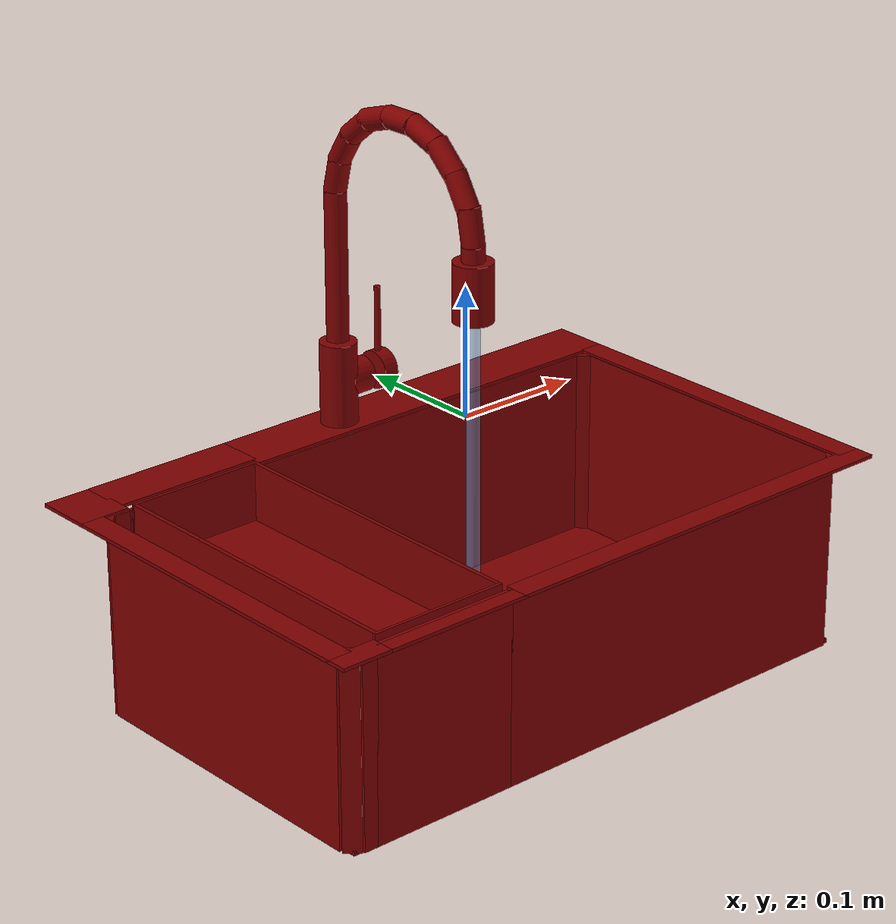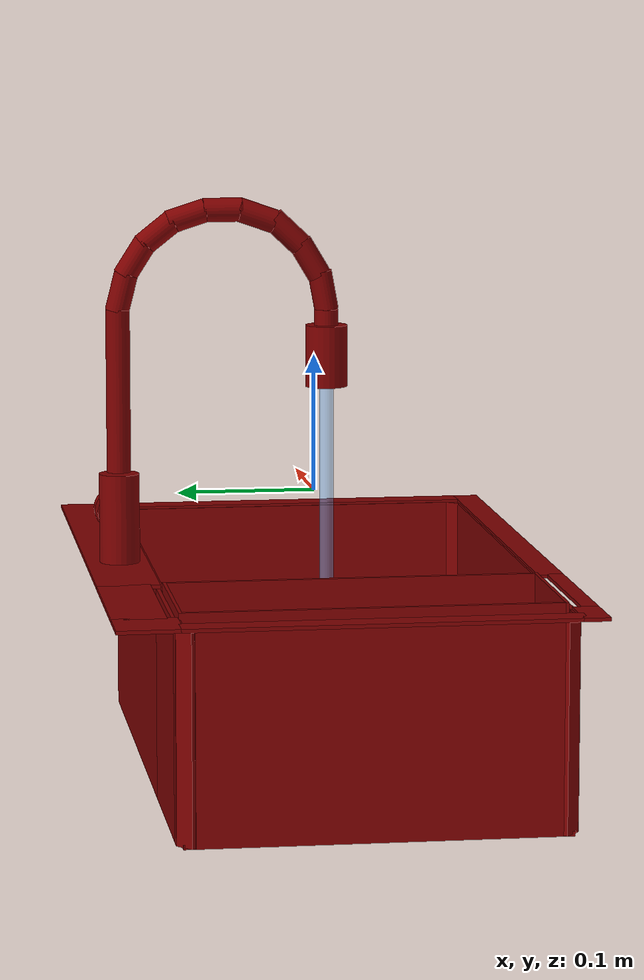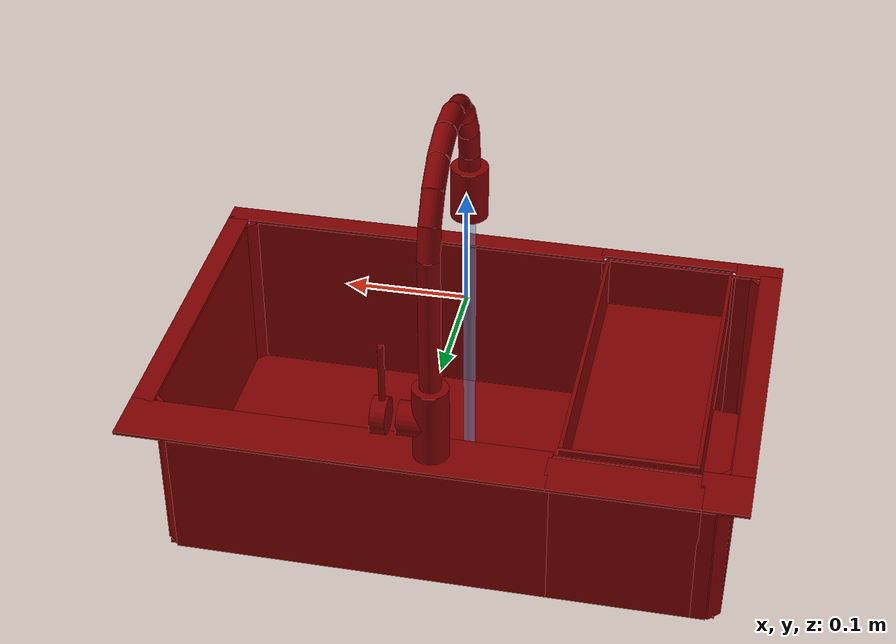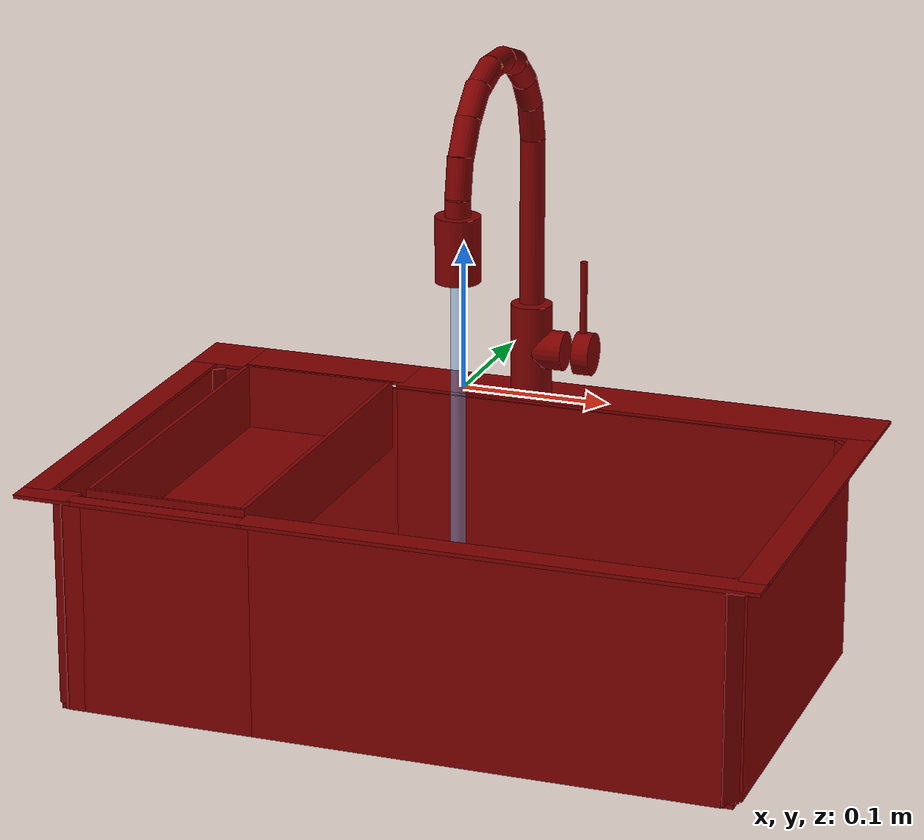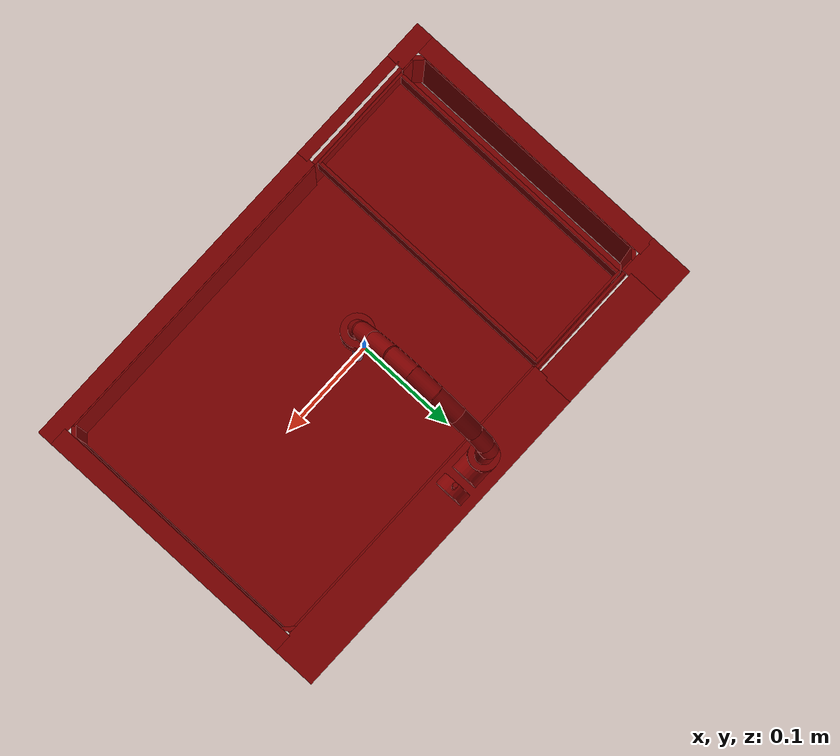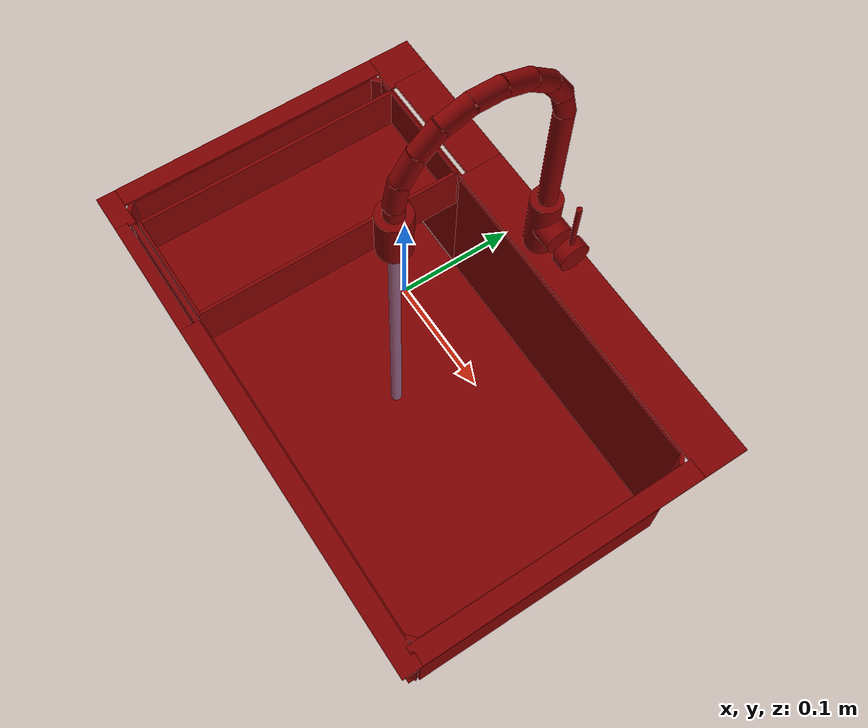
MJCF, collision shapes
<?xml version='1.0' encoding='UTF-8'?>
<mujoco model="model">
  <option timestep="0.002" gravity="0.0 0.0 -9.81"/>
  <compiler angle="radian"/>
  <asset>
    <mesh file="visuals/handle.obj" name="handle_vis"/>
    <mesh file="visuals/Body001.obj" name="Body001_vis"/>
    <mesh file="visuals/Container001.obj" name="Container001_vis"/>
    <mesh file="visuals/spout.obj" name="spout_vis"/>
    <texture file="visuals/T_BC001.png" name="Body001_material" type="2d"/>
    <material name="Body001_material" rgba="1 1 1 1.0" texture="Body001_material" shininess="0.4472135901451111" specular="1"/>
    <texture file="visuals/T_BC001.png" name="handle_material" type="2d"/>
    <material name="handle_material" rgba="1 1 1 1.0" texture="handle_material" shininess="0.4472135901451111" specular="1"/>
    <texture file="visuals/T_BC001.png" name="Container001_material" type="2d"/>
    <material name="Container001_material" rgba="1 1 1 1.0" texture="Container001_material" shininess="0.4472135901451111" specular="1"/>
    <texture file="visuals/T_BC001.png" name="spout_material" type="2d"/>
    <material name="spout_material" rgba="1 1 1 1.0" texture="spout_material" shininess="0.4472135901451111" specular="1"/>
  </asset>
  <default>
    <default class="visual">
      <geom conaffinity="0" contype="0" group="1" type="mesh"/>
    </default>
    <default class="collision">
      <geom group="0" rgba="0.5 0 0 0.5" solimp="0.998 0.998 0.001" solref="0.001 2"/>
    </default>
    <default class="spawn">
      <geom group="0" rgba="1 1 1 0.5" contype="0" conaffinity="0"/>
      <site group="0" rgba="1 1 1 0.5"/>
    </default>
    <default class="region">
      <geom group="1" conaffinity="0" contype="0" rgba="0 1 0 0"/>
    </default>
  </default>
  <worldbody>
    <body>
      <body name="object">
        <geom mesh="Body001_vis" type="mesh" solimp="0.998 0.998 0.001" solref="0.001 1" friction="0.95 0.3 0.1" class="visual" material="Body001_material"/>
        <geom class="collision" type="box" pos="0.07925006 0.14509603 -0.05103695" size="0.1742602437734604 0.02266811951994896 0.0013388915685936809" quat="1.0 0.0 0.0 0.0"/>
        <geom class="collision" type="box" pos="-0.24390166 -0.01413567 -0.05103695" size="0.009608655236661434 0.1381855607032776 0.0013388915685936809" quat="1.0 0.0 0.0 0.0"/>
        <geom class="collision" type="box" pos="0.06694534 -0.15013629 -0.12843425" size="0.16059443354606628 0.0026066654827445745 0.0768933892250061" quat="1.0 0.0 0.0 0.0"/>
        <geom class="collision" type="box" pos="0.24397039 -0.01413567 -0.05103695" size="0.009520158171653748 0.1381855607032776 0.0013388915685936809" quat="1.0 0.0 0.0 0.0"/>
        <geom class="collision" type="box" pos="0.07925005 -0.15836354 -0.05103695" size="0.1742602437734604 0.009400634095072746 0.0013388915685936809" quat="1.0 0.0 0.0 0.0"/>
        <geom class="collision" type="box" pos="0.23019433 0.11907686 -0.12843425" size="0.002092407550662756 0.007040669675916433 0.0768933892250061" quat="0.9178581237792969 0.0 0.0 0.3969086706638336"/>
        <geom class="collision" type="box" pos="0.06694534 0.12310408 -0.12843425" size="0.16059443354606628 0.0026066654827445745 0.0768933892250061" quat="1.0 0.0 0.0 0.0"/>
        <geom class="collision" type="box" pos="-0.23540011 -0.01331198 -0.12843425" size="0.0020924056880176067 0.12659867107868195 0.0768933892250061" quat="1.0 0.0 0.0 0.0"/>
        <geom class="collision" type="box" pos="0.23569125 -0.01189944 -0.12843425" size="0.0020924056880176067 0.12801121175289154 0.0768933892250061" quat="1.0 0.0 0.0 0.0"/>
        <geom class="collision" type="box" pos="0.23019433 -0.14587688 -0.12843425" size="0.002092407550662756 0.007040669675916433 0.0768933892250061" quat="6.929635532060274e-08 -0.3969086706638336 -0.9178581237792969 -2.9965775638629566e-08"/>
        <geom class="collision" type="box" pos="-0.23086193 -0.14587688 -0.12843425" size="0.0020924073178321123 0.007040669210255146 0.0768933892250061" quat="0.3969087302684784 0.0 0.0 -0.9178580641746521"/>
        <geom class="collision" type="box" pos="-0.23086193 0.11907686 -0.12843425" size="0.002092407550662756 0.007040669675916433 0.0768933892250061" quat="6.929635532060274e-08 0.9178581237792969 -0.3969086706638336 -2.9965775638629566e-08"/>
        <geom class="collision" type="box" pos="0.00112178 -0.01395388 -0.20496946" size="0.23358622193336487 0.13538309931755066 0.0017036173958331347" quat="1.0 0.0 0.0 0.0"/>
        <geom class="collision" type="cylinder" pos="-0.00084059 0.14307278 -0.01830431" size="0.014659702777862549 0.03382165729999542" quat="1.0 0.0 0.0 0.0"/>
        <geom class="collision" type="cylinder" pos="0.01333642 0.14307278 -0.01722438" size="0.01393008790910244 0.011113598942756653" quat="0.7071068286895752 -0.0 0.7071067690849304 0.0"/>
        <geom class="collision" type="box" pos="-0.21935132 0.12310408 -0.12843425" size="0.00652328971773386 0.0026066654827445745 0.0768933892250061" quat="1.0 0.0 0.0 0.0"/>
        <geom class="collision" type="box" pos="-0.23316917 -0.15836354 -0.05103695" size="0.020341139286756516 0.009400634095072746 0.0013388915685936809" quat="1.0 0.0 0.0 0.0"/>
        <geom class="collision" type="box" pos="-0.21935132 -0.15013629 -0.12843425" size="0.00652328971773386 0.0026066654827445745 0.0768933892250061" quat="1.0 0.0 0.0 0.0"/>
        <geom class="collision" type="box" pos="-0.23316917 0.14509603 -0.05103695" size="0.020341139286756516 0.02266811951994896 0.0013388915685936809" quat="1.0 0.0 0.0 0.0"/>
        <geom class="collision" type="box" pos="-0.15328798 -0.15080370 -0.12885174" size="0.0609254390001297 0.0019392507383599877 0.07647588849067688" quat="1.0 0.0 0.0 0.0"/>
        <geom class="collision" type="box" pos="-0.15328798 0.12429546 -0.12885174" size="0.0609254390001297 0.0014152881922200322 0.07647588849067688" quat="1.0 0.0 0.0 0.0"/>
        <geom class="collision" type="box" pos="-0.15415233 0.14863072 -0.05103695" size="0.06198527663946152 0.0191334281116724 0.0013388915685936809" quat="1.0 0.0 0.0 0.0"/>
        <geom class="collision" type="box" pos="-0.15415233 -0.16174048 -0.05103695" size="0.06198527663946152 0.006023674737662077 0.0013388915685936809" quat="1.0 0.0 0.0 0.0"/>
        <geom class="collision" type="cylinder" pos="-0.00001893 0.01115477 -0.21149802" size="0.02953197993338108 0.003640978829935193" quat="1.0 0.0 0.0 0.0"/>
        <body name="handle">
          <joint axis="1.0 0.0 0.0" pos="0.03763191 0.14295934 -0.01775913" limited="true" name="handle_temp_joint" type="hinge" range="-0.7853981633974483 0.7853981633974483" damping="0.5" frictionloss="1" armature="2"/>
          <joint axis="0.0 1.0 0.0" pos="0.03763191 0.14295934 -0.01775913" limited="true" name="handle_joint" type="hinge" range="0 0.5" damping="0.5" frictionloss="1" armature="2"/>
          <geom mesh="handle_vis" type="mesh" solimp="0.998 0.998 0.001" solref="0.001 1" friction="0.95 0.3 0.1" class="visual" material="handle_material"/>
          <geom class="collision" type="cylinder" pos="0.03898787 0.14307278 -0.01722438" size="0.015159760601818562 0.006152501329779625" quat="0.7071068286895752 -0.0 0.7071067690849304 0.0"/>
          <geom name="handle_main" class="collision" type="cylinder" pos="0.03762576 0.14268374 0.02398030" size="0.0024957298301160336 0.025888843461871147" quat="1.0 0.0 0.0 0.0"/>
        </body>
        <body name="Container001">
          <joint axis="0.0 0.0 1.0" pos="-0.15404803 -0.01304828 -0.07228554" limited="true" name="Container001_joint" range="0.0 0.05" type="slide" damping="1" frictionloss="1" armature=".01" stiffness="0.05"/>
          <geom mesh="Container001_vis" type="mesh" solimp="0.998 0.998 0.001" solref="0.001 1" friction="0.95 0.3 0.1" class="visual" material="Container001_material"/>
          <geom class="collision" type="box" pos="-0.20861363 -0.01314540 -0.07226149" size="0.0016650656471028924 0.1346350908279419 0.02490529976785183" quat="1.0 0.0 0.0 0.0"/>
          <geom class="collision" type="box" pos="-0.15396377 -0.01314540 -0.09531340" size="0.05309569835662842 0.1346352994441986 0.001853708177804947" quat="1.0 0.0 0.0 0.0"/>
          <geom class="collision" type="box" pos="-0.15404290 -0.14658338 -0.07220368" size="0.05623580142855644 0.0012342403642833233 0.024903563782572746" quat="1.0 0.0 0.0 0.0"/>
          <geom class="collision" type="box" pos="-0.15404290 0.12038092 -0.07220368" size="0.05623580142855644 0.0012342422269284725 0.024903593584895134" quat="1.0 0.0 0.0 0.0"/>
          <geom class="collision" type="box" pos="-0.09946799 -0.01314540 -0.07226149" size="0.0016650656471028924 0.13463596999645233 0.024905407801270485" quat="1.0 0.0 0.0 0.0"/>
        </body>
        <body name="spout">
          <joint axis="0.0 0.0 1.0" pos="-0.00073327 0.14347795 0.11046252" limited="true" name="spout_joint" range="-0.7853981633974483 0.7853981633974483" type="hinge" damping="10"/>
          <site type="cylinder" rgba="0.5 0.75 1 0.5" size="0.0050875539891421795 0.14940723776817322" pos="-0.00071613 -0.00928046 -0.06567902" name="water"/>
          <geom mesh="spout_vis" type="mesh" solimp="0.998 0.998 0.001" solref="0.001 1" friction="0.95 0.3 0.1" class="visual" material="spout_material"/>
          <geom class="collision" type="cylinder" pos="-0.00083679 0.14021060 0.14753846" size="0.00873343925923109 0.014072390273213387" quat="0.9924028515815735 0.12303092330694199 0.0 0.0"/>
          <geom class="collision" type="cylinder" pos="-0.00083679 0.14319599 0.07617003" size="0.00873343925923109 0.05940964072942734" quat="1.0 0.0 0.0 0.0"/>
          <geom class="collision" type="cylinder" pos="-0.00083679 0.13050504 0.17124890" size="0.00873343925923109 0.014072390273213387" quat="0.9599521160125732 0.28016406297683716 0.0 0.0"/>
          <geom class="collision" type="cylinder" pos="-0.00083679 0.11375905 0.19013270" size="0.00873343925923109 0.014072390273213387" quat="0.9006063342094421 0.4346356987953186 0.0 0.0"/>
          <geom class="collision" type="cylinder" pos="-0.00083679 0.09261872 0.20200928" size="0.00873343925923109 0.014072390273213387" quat="0.8086215853691101 0.5883290767669678 0.0 0.0"/>
          <geom class="collision" type="cylinder" pos="-0.00083679 0.06688611 0.20640363" size="0.00873343925923109 0.014072390273213387" quat="0.7107754945755005 0.7034189105033875 0.0 0.0"/>
          <geom class="collision" type="cylinder" pos="-0.00083679 0.04214321 0.20224680" size="0.00873343925923109 0.014072390273213387" quat="0.5772291421890259 0.816582202911377 0.0 0.0"/>
          <geom class="collision" type="cylinder" pos="-0.00083679 0.01993398 0.19001393" size="0.00873343925923109 0.014072390273213387" quat="0.39552512764930725 0.918455183506012 0.0 0.0"/>
          <geom class="collision" type="cylinder" pos="-0.00083679 0.00330675 0.17029880" size="0.00873343925923109 0.014072390273213387" quat="0.26599380373954773 0.9639747142791748 0.0 0.0"/>
          <geom class="collision" type="cylinder" pos="-0.00083679 -0.00666958 0.14690192" size="0.00873343925923109 0.014072388410568237" quat="0.09022616595029831 0.9959213137626648 0.0 0.0"/>
          <geom class="collision" type="cylinder" pos="-0.00083679 -0.00905960 0.11920386" size="0.00873343925923109 0.014072390273213387" quat="0.0050633493810892105 0.9999871850013733 0.0 0.0"/>
          <geom class="collision" type="cylinder" pos="-0.00083679 -0.00905960 0.09929056" size="0.01536933146417141 0.022484920918941498" quat="7.549790126404332e-08 0.0 0.0 1.0" name="spout_main"/>
        </body>
        <geom class="region" name="reg_basin" type="box" pos="0.066154465 -0.013232815000000002 -0.12659796" size="0.158630245 0.128138795 0.07273827"/>
        <geom class="region" name="reg_main" type="box" pos="0.0 0.0 -0.132528035" size="0.2545103 0.16876416 0.083610965"/>
      </body>
    </body>
  </worldbody>
  <actuator>
    <motor name="handle_joint_actuator" joint="handle_joint" gear="10"/>
    <motor name="handle_temp_joint_actuator" joint="handle_temp_joint" gear="10"/>
    <motor name="Container001_joint_actuator" joint="Container001_joint" gear="10"/>
    <motor name="spout_joint_actuator" joint="spout_joint" gear="10"/>
  </actuator>
</mujoco>
